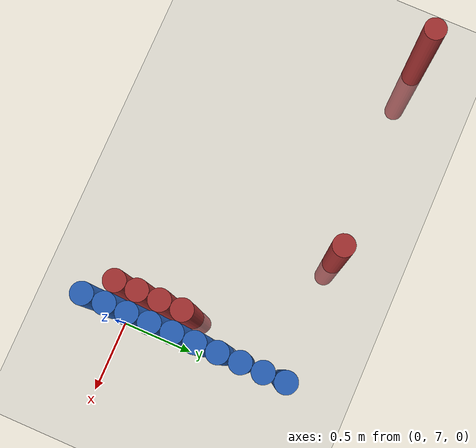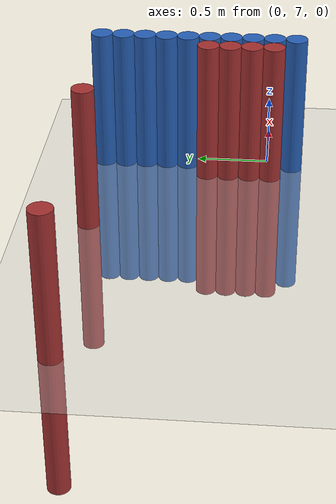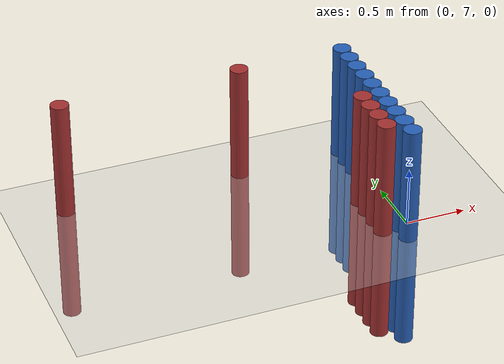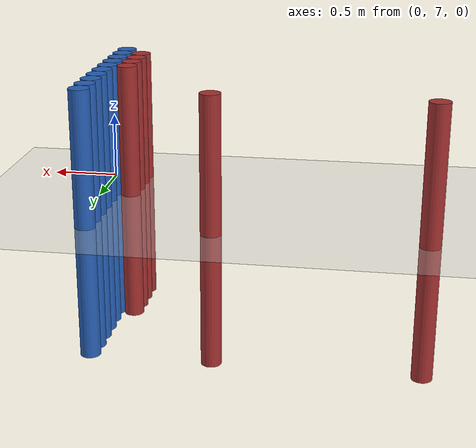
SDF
<sdf version="1.6">
 <world name="default">
  <model name="ground_plane">
   <static>1</static>
   <link name="link">
    <collision name="collision">
     <geometry><plane><normal>0 0 1</normal><size>100 100</size></plane></geometry>
     <surface><friction><ode><mu>100</mu><mu2>50</mu2></ode></friction></surface>
    </collision>
    <visual name="visual">
     <cast_shadows>0</cast_shadows>
     <geometry><plane><normal>0 0 1</normal><size>100 100</size></plane></geometry>
     <material>
      <script><uri>file://media/materials/scripts/gazebo.material</uri><name>Gazebo/Grey</name></script>
     </material>
    </visual>
   </link>
  </model>
  <model name="unit_cylinder_168">
   <static>1</static>
   <pose>-2.475000 8.175000 0.000000 0.000000 0.000000 0.000000</pose>
   <link name="link">
    <inertial>
     <mass>1</mass>
     <inertia><ixx>0.145833</ixx><ixy>0</ixy><ixz>0</ixz><iyy>0.145833</iyy><iyz>0</iyz><izz>0.125</izz></inertia>
    </inertial>
    <collision name="collision">
     <geometry><cylinder><radius>0.075000</radius><length>2</length></cylinder></geometry>
    </collision>
    <visual name="visual">
     <geometry><cylinder><radius>0.075000</radius><length>2</length></cylinder></geometry>
     <material>
      <ambient>0.648000 0.192000 0.192000 1</ambient>
      <diffuse>0.648000 0.192000 0.192000 1</diffuse>
     </material>
     <material>
      <script><name>Gazebo/Grey</name><uri>file://media/materials/scripts/gazebo.material</uri></script>
     </material>
    </visual>
   </link>
  </model>
  <model name="unit_cylinder_197">
   <static>1</static>
   <pose>-0.975000 8.175000 0.000000 0.000000 0.000000 0.000000</pose>
   <link name="link">
    <inertial>
     <mass>1</mass>
     <inertia><ixx>0.145833</ixx><ixy>0</ixy><ixz>0</ixz><iyy>0.145833</iyy><iyz>0</iyz><izz>0.125</izz></inertia>
    </inertial>
    <collision name="collision">
     <geometry><cylinder><radius>0.075000</radius><length>2</length></cylinder></geometry>
    </collision>
    <visual name="visual">
     <geometry><cylinder><radius>0.075000</radius><length>2</length></cylinder></geometry>
     <material>
      <ambient>0.648000 0.192000 0.192000 1</ambient>
      <diffuse>0.648000 0.192000 0.192000 1</diffuse>
     </material>
     <material>
      <script><name>Gazebo/Grey</name><uri>file://media/materials/scripts/gazebo.material</uri></script>
     </material>
    </visual>
   </link>
  </model>
  <model name="unit_cylinder_209">
   <static>1</static>
   <pose>-0.225000 6.975000 0.000000 0.000000 0.000000 0.000000</pose>
   <link name="link">
    <inertial>
     <mass>1</mass>
     <inertia><ixx>0.145833</ixx><ixy>0</ixy><ixz>0</ixz><iyy>0.145833</iyy><iyz>0</iyz><izz>0.125</izz></inertia>
    </inertial>
    <collision name="collision">
     <geometry><cylinder><radius>0.075000</radius><length>2</length></cylinder></geometry>
    </collision>
    <visual name="visual">
     <geometry><cylinder><radius>0.075000</radius><length>2</length></cylinder></geometry>
     <material>
      <ambient>0.648000 0.192000 0.192000 1</ambient>
      <diffuse>0.648000 0.192000 0.192000 1</diffuse>
     </material>
     <material>
      <script><name>Gazebo/Grey</name><uri>file://media/materials/scripts/gazebo.material</uri></script>
     </material>
    </visual>
   </link>
  </model>
  <model name="unit_cylinder_210">
   <static>1</static>
   <pose>-0.225000 7.125000 0.000000 0.000000 0.000000 0.000000</pose>
   <link name="link">
    <inertial>
     <mass>1</mass>
     <inertia><ixx>0.145833</ixx><ixy>0</ixy><ixz>0</ixz><iyy>0.145833</iyy><iyz>0</iyz><izz>0.125</izz></inertia>
    </inertial>
    <collision name="collision">
     <geometry><cylinder><radius>0.075000</radius><length>2</length></cylinder></geometry>
    </collision>
    <visual name="visual">
     <geometry><cylinder><radius>0.075000</radius><length>2</length></cylinder></geometry>
     <material>
      <ambient>0.648000 0.192000 0.192000 1</ambient>
      <diffuse>0.648000 0.192000 0.192000 1</diffuse>
     </material>
     <material>
      <script><name>Gazebo/Grey</name><uri>file://media/materials/scripts/gazebo.material</uri></script>
     </material>
    </visual>
   </link>
  </model>
  <model name="unit_cylinder_211">
   <static>1</static>
   <pose>-0.225000 7.275000 0.000000 0.000000 0.000000 0.000000</pose>
   <link name="link">
    <inertial>
     <mass>1</mass>
     <inertia><ixx>0.145833</ixx><ixy>0</ixy><ixz>0</ixz><iyy>0.145833</iyy><iyz>0</iyz><izz>0.125</izz></inertia>
    </inertial>
    <collision name="collision">
     <geometry><cylinder><radius>0.075000</radius><length>2</length></cylinder></geometry>
    </collision>
    <visual name="visual">
     <geometry><cylinder><radius>0.075000</radius><length>2</length></cylinder></geometry>
     <material>
      <ambient>0.648000 0.192000 0.192000 1</ambient>
      <diffuse>0.648000 0.192000 0.192000 1</diffuse>
     </material>
     <material>
      <script><name>Gazebo/Grey</name><uri>file://media/materials/scripts/gazebo.material</uri></script>
     </material>
    </visual>
   </link>
  </model>
  <model name="unit_cylinder_212">
   <static>1</static>
   <pose>-0.225000 7.425000 0.000000 0.000000 0.000000 0.000000</pose>
   <link name="link">
    <inertial>
     <mass>1</mass>
     <inertia><ixx>0.145833</ixx><ixy>0</ixy><ixz>0</ixz><iyy>0.145833</iyy><iyz>0</iyz><izz>0.125</izz></inertia>
    </inertial>
    <collision name="collision">
     <geometry><cylinder><radius>0.075000</radius><length>2</length></cylinder></geometry>
    </collision>
    <visual name="visual">
     <geometry><cylinder><radius>0.075000</radius><length>2</length></cylinder></geometry>
     <material>
      <ambient>0.648000 0.192000 0.192000 1</ambient>
      <diffuse>0.648000 0.192000 0.192000 1</diffuse>
     </material>
     <material>
      <script><name>Gazebo/Grey</name><uri>file://media/materials/scripts/gazebo.material</uri></script>
     </material>
    </visual>
   </link>
  </model>
  <model name="unit_cylinder_229">
   <static>1</static>
   <pose>-0.075000 6.825000 0.000000 0.000000 0.000000 0.000000</pose>
   <link name="link">
    <inertial>
     <mass>1</mass>
     <inertia><ixx>0.145833</ixx><ixy>0</ixy><ixz>0</ixz><iyy>0.145833</iyy><iyz>0</iyz><izz>0.125</izz></inertia>
    </inertial>
    <collision name="collision">
     <geometry><cylinder><radius>0.075000</radius><length>2</length></cylinder></geometry>
    </collision>
    <visual name="visual">
     <geometry><cylinder><radius>0.075000</radius><length>2</length></cylinder></geometry>
     <material>
      <ambient>0.152000 0.379000 0.720000 1</ambient>
      <diffuse>0.152000 0.379000 0.720000 1</diffuse>
     </material>
     <material>
      <script><name>Gazebo/Grey</name><uri>file://media/materials/scripts/gazebo.material</uri></script>
     </material>
    </visual>
   </link>
  </model>
  <model name="unit_cylinder_230">
   <static>1</static>
   <pose>-0.075000 6.975000 0.000000 0.000000 0.000000 0.000000</pose>
   <link name="link">
    <inertial>
     <mass>1</mass>
     <inertia><ixx>0.145833</ixx><ixy>0</ixy><ixz>0</ixz><iyy>0.145833</iyy><iyz>0</iyz><izz>0.125</izz></inertia>
    </inertial>
    <collision name="collision">
     <geometry><cylinder><radius>0.075000</radius><length>2</length></cylinder></geometry>
    </collision>
    <visual name="visual">
     <geometry><cylinder><radius>0.075000</radius><length>2</length></cylinder></geometry>
     <material>
      <ambient>0.152000 0.379000 0.720000 1</ambient>
      <diffuse>0.152000 0.379000 0.720000 1</diffuse>
     </material>
     <material>
      <script><name>Gazebo/Grey</name><uri>file://media/materials/scripts/gazebo.material</uri></script>
     </material>
    </visual>
   </link>
  </model>
  <model name="unit_cylinder_231">
   <static>1</static>
   <pose>-0.075000 7.125000 0.000000 0.000000 0.000000 0.000000</pose>
   <link name="link">
    <inertial>
     <mass>1</mass>
     <inertia><ixx>0.145833</ixx><ixy>0</ixy><ixz>0</ixz><iyy>0.145833</iyy><iyz>0</iyz><izz>0.125</izz></inertia>
    </inertial>
    <collision name="collision">
     <geometry><cylinder><radius>0.075000</radius><length>2</length></cylinder></geometry>
    </collision>
    <visual name="visual">
     <geometry><cylinder><radius>0.075000</radius><length>2</length></cylinder></geometry>
     <material>
      <ambient>0.152000 0.379000 0.720000 1</ambient>
      <diffuse>0.152000 0.379000 0.720000 1</diffuse>
     </material>
     <material>
      <script><name>Gazebo/Grey</name><uri>file://media/materials/scripts/gazebo.material</uri></script>
     </material>
    </visual>
   </link>
  </model>
  <model name="unit_cylinder_232">
   <static>1</static>
   <pose>-0.075000 7.275000 0.000000 0.000000 0.000000 0.000000</pose>
   <link name="link">
    <inertial>
     <mass>1</mass>
     <inertia><ixx>0.145833</ixx><ixy>0</ixy><ixz>0</ixz><iyy>0.145833</iyy><iyz>0</iyz><izz>0.125</izz></inertia>
    </inertial>
    <collision name="collision">
     <geometry><cylinder><radius>0.075000</radius><length>2</length></cylinder></geometry>
    </collision>
    <visual name="visual">
     <geometry><cylinder><radius>0.075000</radius><length>2</length></cylinder></geometry>
     <material>
      <ambient>0.152000 0.379000 0.720000 1</ambient>
      <diffuse>0.152000 0.379000 0.720000 1</diffuse>
     </material>
     <material>
      <script><name>Gazebo/Grey</name><uri>file://media/materials/scripts/gazebo.material</uri></script>
     </material>
    </visual>
   </link>
  </model>
  <model name="unit_cylinder_233">
   <static>1</static>
   <pose>-0.075000 7.425000 0.000000 0.000000 0.000000 0.000000</pose>
   <link name="link">
    <inertial>
     <mass>1</mass>
     <inertia><ixx>0.145833</ixx><ixy>0</ixy><ixz>0</ixz><iyy>0.145833</iyy><iyz>0</iyz><izz>0.125</izz></inertia>
    </inertial>
    <collision name="collision">
     <geometry><cylinder><radius>0.075000</radius><length>2</length></cylinder></geometry>
    </collision>
    <visual name="visual">
     <geometry><cylinder><radius>0.075000</radius><length>2</length></cylinder></geometry>
     <material>
      <ambient>0.152000 0.379000 0.720000 1</ambient>
      <diffuse>0.152000 0.379000 0.720000 1</diffuse>
     </material>
     <material>
      <script><name>Gazebo/Grey</name><uri>file://media/materials/scripts/gazebo.material</uri></script>
     </material>
    </visual>
   </link>
  </model>
  <model name="unit_cylinder_234">
   <static>1</static>
   <pose>-0.075000 7.575000 0.000000 0.000000 0.000000 0.000000</pose>
   <link name="link">
    <inertial>
     <mass>1</mass>
     <inertia><ixx>0.145833</ixx><ixy>0</ixy><ixz>0</ixz><iyy>0.145833</iyy><iyz>0</iyz><izz>0.125</izz></inertia>
    </inertial>
    <collision name="collision">
     <geometry><cylinder><radius>0.075000</radius><length>2</length></cylinder></geometry>
    </collision>
    <visual name="visual">
     <geometry><cylinder><radius>0.075000</radius><length>2</length></cylinder></geometry>
     <material>
      <ambient>0.152000 0.379000 0.720000 1</ambient>
      <diffuse>0.152000 0.379000 0.720000 1</diffuse>
     </material>
     <material>
      <script><name>Gazebo/Grey</name><uri>file://media/materials/scripts/gazebo.material</uri></script>
     </material>
    </visual>
   </link>
  </model>
  <model name="unit_cylinder_235">
   <static>1</static>
   <pose>-0.075000 7.725000 0.000000 0.000000 0.000000 0.000000</pose>
   <link name="link">
    <inertial>
     <mass>1</mass>
     <inertia><ixx>0.145833</ixx><ixy>0</ixy><ixz>0</ixz><iyy>0.145833</iyy><iyz>0</iyz><izz>0.125</izz></inertia>
    </inertial>
    <collision name="collision">
     <geometry><cylinder><radius>0.075000</radius><length>2</length></cylinder></geometry>
    </collision>
    <visual name="visual">
     <geometry><cylinder><radius>0.075000</radius><length>2</length></cylinder></geometry>
     <material>
      <ambient>0.152000 0.379000 0.720000 1</ambient>
      <diffuse>0.152000 0.379000 0.720000 1</diffuse>
     </material>
     <material>
      <script><name>Gazebo/Grey</name><uri>file://media/materials/scripts/gazebo.material</uri></script>
     </material>
    </visual>
   </link>
  </model>
  <model name="unit_cylinder_236">
   <static>1</static>
   <pose>-0.075000 7.875000 0.000000 0.000000 0.000000 0.000000</pose>
   <link name="link">
    <inertial>
     <mass>1</mass>
     <inertia><ixx>0.145833</ixx><ixy>0</ixy><ixz>0</ixz><iyy>0.145833</iyy><iyz>0</iyz><izz>0.125</izz></inertia>
    </inertial>
    <collision name="collision">
     <geometry><cylinder><radius>0.075000</radius><length>2</length></cylinder></geometry>
    </collision>
    <visual name="visual">
     <geometry><cylinder><radius>0.075000</radius><length>2</length></cylinder></geometry>
     <material>
      <ambient>0.152000 0.379000 0.720000 1</ambient>
      <diffuse>0.152000 0.379000 0.720000 1</diffuse>
     </material>
     <material>
      <script><name>Gazebo/Grey</name><uri>file://media/materials/scripts/gazebo.material</uri></script>
     </material>
    </visual>
   </link>
  </model>
  <model name="unit_cylinder_237">
   <static>1</static>
   <pose>-0.075000 8.025000 0.000000 0.000000 0.000000 0.000000</pose>
   <link name="link">
    <inertial>
     <mass>1</mass>
     <inertia><ixx>0.145833</ixx><ixy>0</ixy><ixz>0</ixz><iyy>0.145833</iyy><iyz>0</iyz><izz>0.125</izz></inertia>
    </inertial>
    <collision name="collision">
     <geometry><cylinder><radius>0.075000</radius><length>2</length></cylinder></geometry>
    </collision>
    <visual name="visual">
     <geometry><cylinder><radius>0.075000</radius><length>2</length></cylinder></geometry>
     <material>
      <ambient>0.152000 0.379000 0.720000 1</ambient>
      <diffuse>0.152000 0.379000 0.720000 1</diffuse>
     </material>
     <material>
      <script><name>Gazebo/Grey</name><uri>file://media/materials/scripts/gazebo.material</uri></script>
     </material>
    </visual>
   </link>
  </model>
  <model name="unit_cylinder_238">
   <static>1</static>
   <pose>-0.075000 8.175000 0.000000 0.000000 0.000000 0.000000</pose>
   <link name="link">
    <inertial>
     <mass>1</mass>
     <inertia><ixx>0.145833</ixx><ixy>0</ixy><ixz>0</ixz><iyy>0.145833</iyy><iyz>0</iyz><izz>0.125</izz></inertia>
    </inertial>
    <collision name="collision">
     <geometry><cylinder><radius>0.075000</radius><length>2</length></cylinder></geometry>
    </collision>
    <visual name="visual">
     <geometry><cylinder><radius>0.075000</radius><length>2</length></cylinder></geometry>
     <material>
      <ambient>0.152000 0.379000 0.720000 1</ambient>
      <diffuse>0.152000 0.379000 0.720000 1</diffuse>
     </material>
     <material>
      <script><name>Gazebo/Grey</name><uri>file://media/materials/scripts/gazebo.material</uri></script>
     </material>
    </visual>
   </link>
  </model>
 </world>
</sdf>
